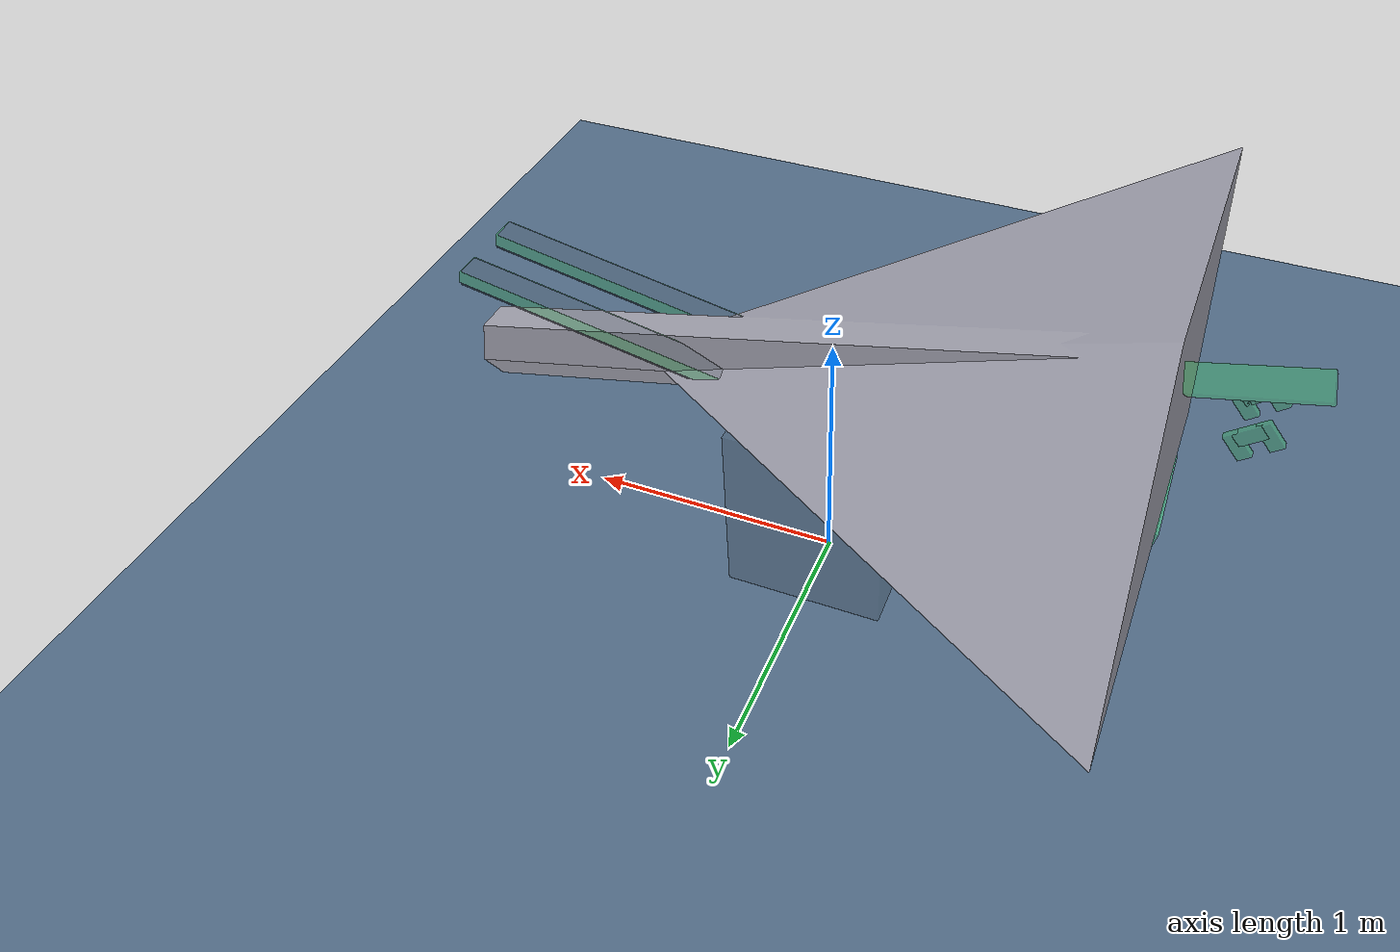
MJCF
<mujoco model="uav_rail_scene">
  <!-- ==============================================
       Compiler & Options
       ============================================== -->
  <compiler angle="degree" eulerseq="xyz" meshdir="/home/heinz/isaaclab_uav/assets" />
  <option timestep="0.005" gravity="0 0 -9.81" impratio="20" tolerance="1e-8" ls_tolerance="1e-8" noslip_tolerance="1e-8">
    <flag contact="enable" />
  </option>
  <!-- Soft contacts — damped collisions between rigid bodies.
       Cart stays non-collidable (contype=0 on its geoms) since the
       prismatic joint already handles its motion along the rail.    -->
  <contact>
    <pair name="uav_ground" geom1="ground" geom2="uav_body" solref="0.01 0.9" solimp="0.95 0.99 0.001 0.5 2" condim="3" friction="0.5 0.3 0.1" />
    <pair name="uav_cart" geom1="cart_geom" geom2="uav_body" solref="0.01 0.9" solimp="0.95 0.99 0.001 0.5 2" condim="3" friction="0 0 0" />
  </contact>
  <visual>
    <map stiffness="1000" fogstart="10" fogend="80" />
    <quality shadowsize="2048" />
    <headlight diffuse="0.6 0.6 0.6" ambient="0.3 0.3 0.3" />
  </visual>
  <!-- ==============================================
       Assets: Meshes
       ============================================== -->
  <asset>
    <!-- UAV collision/visual mesh -->
    <mesh name="uav_mesh" file="shahed-136/source/shahed_collision_2.stl" />
    <!-- Rail structure mesh -->
    <mesh name="rail_mesh" file="shahed-136/source/rail_collision.stl" />
    <!-- Launch cart mesh -->
    <mesh name="cart_mesh" file="shahed-136/source/launch_cart.stl" />
  </asset>
  <!-- ==============================================
       World Body
       ============================================== -->
  <worldbody>
    <!-- Ground plane (infinite flat plane at z=0) -->
    <geom name="ground" type="plane" size="50 50 0.1" pos="0 0 0" rgba="0.3 0.4 0.5 1" />
    <!-- Lighting -->
    <light directional="true" diffuse="0.8 0.8 0.8" specular="0.2 0.2 0.2" pos="5 5 10" dir="-0.5 -0.5 -1" />
    <body name="base_link" pos="0 0 0" quat="1 0 0 0">
      <geom name="base_geom" type="mesh" mesh="rail_mesh" rgba="0.25 0.30 0.35 0.25" density="0" contype="0" conaffinity="0" />
      <!-- rail.Cube.001 (box) -->
      <geom name="rail_col_001" type="box" size="0.1 0.2 0.1" pos="-1.09 0 0.64" quat="0.77301 0 0.634393 0" density="0" rgba="0.2 0.9 0.4 0.35" group="0" />
      <!-- rail.Cube.011 (box) -->
      <geom name="rail_col_011" type="box" size="0.025 0.05 1.2" pos="0.21 -0.125 0.83" quat="0.77301 0 0.634393 0" density="0" rgba="0.2 0.9 0.4 0.35" group="0" />
      <!-- rail.Cube.012 (box) -->
      <geom name="rail_col_012" type="box" size="0.025 0.05 1.2" pos="0.21 0.125 0.83" quat="0.77301 0 0.634393 0" density="0" rgba="0.2 0.9 0.4 0.35" group="0" />
      <!-- Tilted intermediate body — provides the inclined joint frame.
           euler="0 -78.5 0" → local +X ≈ (0.20, 0, 0.98) in world (upward) -->
      <body name="rail_link" pos="-0.65 0 0.71" euler="0 -11.5 0">
        <!-- Launch cart — slides along rail_link's local +X                 -->
        <body name="launch_cart" pos="0 0 0" euler="0 0 0">
          <joint name="rail_joint" type="slide" axis="1 0 0" limited="true" range="0 2" damping="5" stiffness="10" armature="0.01" />
          <inertial pos="0 0 0" mass="5" diaginertia="0.05 0.05 0.02" />
          <!-- Cart — collides with UAV + rail. Joint constraint keeps it
               on track; soft contacts prevent jamming.                       -->
          <geom name="cart_geom" type="mesh" mesh="cart_mesh" rgba="1.0 0.4 0.1 1" density="0" />
          <!-- cart.Cube.001 (box) -->
          <geom name="cart_col_001" type="box" size="0.0225 0.15 0.0225" pos="-0.15 0 0.175" quat="0.976296 0 0.21644 0" density="0" rgba="0.2 0.9 0.4 0.35" group="0" />
          <!-- cart.Cube.002 (box) -->
          <geom name="cart_col_002" type="box" size="0.275 0.075 0.075" pos="1.49012e-08 0 0" quat="0.92388 0.382683 0 0" density="0" rgba="0.2 0.9 0.4 0.35" group="0" />
          <!-- cart.Cube.011 (box) -->
          <geom name="cart_col_011" type="box" size="0.2 0.025 0.025" pos="0.05 0 0.175" density="0" rgba="0.2 0.9 0.4 0.35" group="0" />
        </body>
      </body>
    </body>
    <body name="uav" pos="-0.2 0 1.00" euler="0 12.8 0">
      <!-- 6-DoF free joint -->
      <joint name="uav_joint" type="free" />
      <!-- Inertial: mass=200 kg, inertia from URDF -->
      <inertial pos="0 0 0" mass="200" diaginertia="40 40 20" />
      <!-- UAV — full collision with everything (default contype/affinity).  -->
      <geom name="uav_body" type="mesh" mesh="uav_mesh" rgba="0.6 0.6 0.65 1" density="0" />
      <!-- veh.Cube.001 (box) -->
      <geom name="veh_col_001" type="box" size="0.0125 0.0125 0.0625" pos="-0.74 0.05 -0.18" density="0" rgba="0.2 0.9 0.4 0.35" group="0" />
      <!-- veh.Cube.002 (box) -->
      <geom name="veh_col_002" type="box" size="0.15 0.075 0.0125" pos="-0.82 0 -0.13" density="0" rgba="0.2 0.9 0.4 0.35" group="0" />
      <!-- veh.Cube.003 (box) -->
      <geom name="veh_col_003" type="box" size="0.0125 0.0375 0.0125" pos="-0.74 0 -0.23" density="0" rgba="0.2 0.9 0.4 0.35" group="0" />
      <!-- veh.Cube.004 (box) -->
      <geom name="veh_col_004" type="box" size="0.025 0.0125 0.05" pos="-1.16336 0.1 -0.168658" quat="0.976296 0 0.21644 0" density="0" rgba="0.2 0.9 0.4 0.35" group="0" />
      <!-- veh.Cube.005 (box) -->
      <geom name="veh_col_005" type="box" size="0.025 0.0125 0.05" pos="-1.26142 0.1 -0.122933" quat="0.976296 0 0.21644 0" density="0" rgba="0.2 0.9 0.4 0.35" group="0" />
      <!-- veh.Cube.006 (box) -->
      <geom name="veh_col_006" type="box" size="0.025 0.0125 0.05" pos="-1.20281 -0.1 -0.122679" quat="0.5373 0 0.843391 0" density="0" rgba="0.2 0.9 0.4 0.35" group="0" />
      <!-- veh.Cube.007 (box) -->
      <geom name="veh_col_007" type="box" size="0.025 0.0125 0.05" pos="-1.20281 0.1 -0.122679" quat="0.5373 0 0.843391 0" density="0" rgba="0.2 0.9 0.4 0.35" group="0" />
      <!-- veh.Cube.008 (box) -->
      <geom name="veh_col_008" type="box" size="0.025 0.0125 0.05" pos="-1.26142 -0.1 -0.122933" quat="0.976296 0 0.21644 0" density="0" rgba="0.2 0.9 0.4 0.35" group="0" />
      <!-- veh.Cube.009 (box) -->
      <geom name="veh_col_009" type="box" size="0.025 0.0125 0.05" pos="-1.16336 -0.1 -0.168658" quat="0.976296 0 0.21644 0" density="0" rgba="0.2 0.9 0.4 0.35" group="0" />
      <!-- veh.Cube.010 (box) -->
      <geom name="veh_col_010" type="box" size="0.0125 0.0125 0.0625" pos="-0.74 -0.05 -0.18" density="0" rgba="0.2 0.9 0.4 0.35" group="0" />
      <!-- veh.Cube.012 (box) -->
      <geom name="veh_col_012" type="box" size="0.5 0.05 0.05" pos="-0.94 0 0" quat="0.92388 0.382683 0 0" density="0" rgba="0.2 0.9 0.4 0.35" group="0" />
    </body>
  </worldbody>
  <!-- ==============================================
       Equality: launch cradle
       ============================================== -->
  <equality>
    <weld name="uav_cradle" body1="launch_cart" body2="uav" />
  </equality>
  <!-- ==============================================
       Actuators
       ============================================== -->
  <actuator>
    <motor name="rail_motor" joint="rail_joint" gear="1" ctrlrange="-20000 20000" />
  </actuator>
  <!-- ==============================================
       Sensors
       ============================================== -->
  <sensor>
    <!-- UAV body velocity -->
    <framelinvel name="uav_vel" objtype="body" objname="uav" />
    <!-- Rail joint position & velocity -->
    <jointpos name="rail_pos" joint="rail_joint" />
    <jointvel name="rail_vel" joint="rail_joint" />
  </sensor>
</mujoco>
